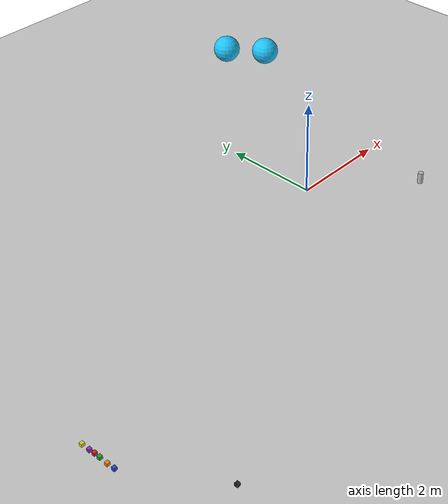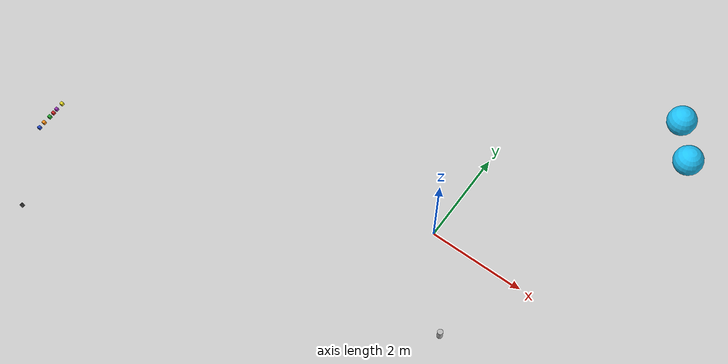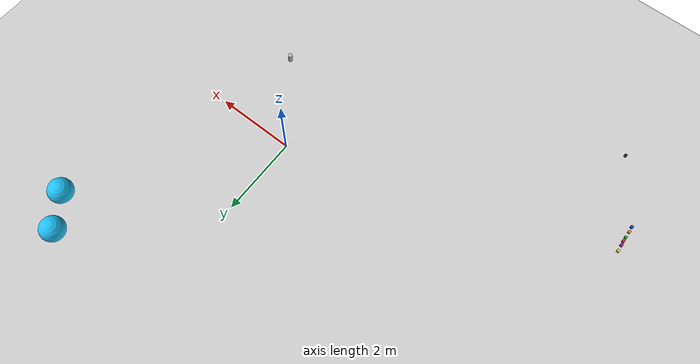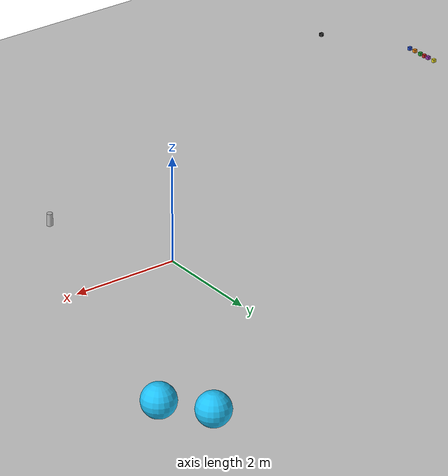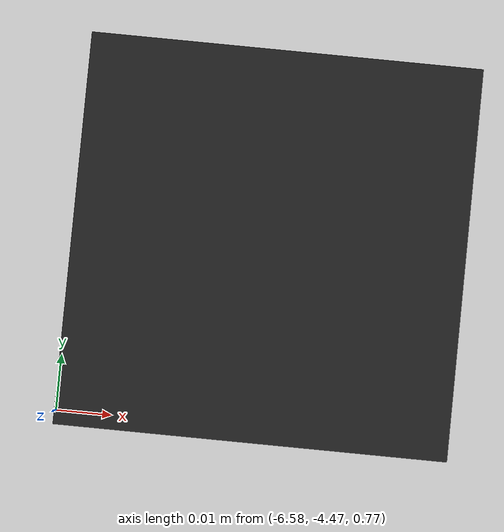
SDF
<sdf version="1.6">
 <world name="default">
  <gravity>0 0 -9.8</gravity>
  <magnetic_field>6e-06 2.3e-05 -4.2e-05</magnetic_field>
  <atmosphere type="adiabatic"/>
  <physics name="default_physics" default="0" type="ode">
   <max_step_size>0.001</max_step_size>
   <real_time_factor>1</real_time_factor>
   <real_time_update_rate>1000</real_time_update_rate>
  </physics>
  <scene>
   <ambient>0.4 0.4 0.4 1</ambient>
   <background>0.7 0.7 0.7 1</background>
   <shadows>0</shadows>
   <grid>0</grid>
   <origin_visual>0</origin_visual>
  </scene>
  <spherical_coordinates>
   <surface_model>EARTH_WGS84</surface_model>
   <latitude_deg>0</latitude_deg>
   <longitude_deg>0</longitude_deg>
   <elevation>0</elevation>
   <heading_deg>0</heading_deg>
  </spherical_coordinates>
  <model name="ground_plane">
   <static>1</static>
   <link name="link">
    <collision name="collision">
     <geometry><plane><normal>0 0 1</normal><size>100 100</size></plane></geometry>
     <surface><friction><ode><mu>100</mu><mu2>50</mu2></ode></friction></surface>
    </collision>
    <visual name="visual">
     <cast_shadows>0</cast_shadows>
     <geometry><plane><normal>0 0 1</normal><size>100 100</size></plane></geometry>
     <material>
      <script><uri>file://media/materials/scripts/gazebo.material</uri><name>Gazebo/Grey</name></script>
     </material>
    </visual>
   </link>
  </model>
  <model name="Ball_01_001">
   <link name="aws_robomaker_residential_Ball_01::link">
    <inertial>
     <mass>0.12</mass>
     <inertia>
      <ixx>0.030752</ixx>
      <ixy>0</ixy>
      <ixz>0</ixz>
      <iyy>0.030752</iyy>
      <iyz>0</iyz>
      <izz>0.030752</izz>
     </inertia>
    </inertial>
    <collision name="collision">
     <geometry><sphere><radius>0.31</radius></sphere></geometry>
     <surface>
      <friction><ode><mu>0.85</mu><mu2>0.85</mu2></ode></friction>
      <contact><ode><kd>8500</kd><max_vel>5.1</max_vel></ode></contact>
     </surface>
    </collision>
    <visual name="visual">
     <geometry><sphere><radius>0.31</radius></sphere></geometry>
     <material><diffuse>0.12 0.76 0.97 1</diffuse><ambient>0.03 0.21 0.27 1</ambient></material>
     <meta><layer>1</layer></meta>
    </visual>
   </link>
   <pose>3.2955 4.22567 0.31 0 -0 0</pose>
  </model>
  <model name="Ball_01_003">
   <link name="aws_robomaker_residential_Ball_01::link">
    <inertial>
     <mass>0.12</mass>
     <inertia>
      <ixx>0.030752</ixx>
      <ixy>0</ixy>
      <ixz>0</ixz>
      <iyy>0.030752</iyy>
      <iyz>0</iyz>
      <izz>0.030752</izz>
     </inertia>
    </inertial>
    <collision name="collision">
     <geometry><sphere><radius>0.31</radius></sphere></geometry>
     <surface>
      <friction><ode><mu>0.85</mu><mu2>0.85</mu2></ode></friction>
      <contact><ode><kd>8500</kd><max_vel>5.1</max_vel></ode></contact>
     </surface>
    </collision>
    <visual name="visual">
     <geometry><sphere><radius>0.31</radius></sphere></geometry>
     <material><diffuse>0.12 0.76 0.97 1</diffuse><ambient>0.03 0.21 0.27 1</ambient></material>
     <meta><layer>1</layer></meta>
    </visual>
   </link>
   <pose>2.7492 4.97777 0.30999 0 -0 0</pose>
  </model>
  <light name="LivingRoom_CeilingLight_0" type="point">
   <pose>1.1943 4.15576 2.2 0 -0 0</pose>
   <diffuse>0.5 0.5 0.5 1</diffuse>
   <specular>0.1 0.1 0.1 1</specular>
   <attenuation>
    <range>20</range>
    <constant>0.32</constant>
    <linear>0.01</linear>
    <quadratic>0.03</quadratic>
   </attenuation>
   <cast_shadows>0</cast_shadows>
   <direction>0 0 -1</direction>
  </light>
  <light name="LivingRoom_CeilingLight_1" type="point">
   <pose>1.1943 -1.58996 2.2 0 -0 0</pose>
   <diffuse>0.5 0.5 0.5 1</diffuse>
   <specular>0.1 0.1 0.1 1</specular>
   <attenuation>
    <range>20</range>
    <constant>0.05</constant>
    <linear>0.01</linear>
    <quadratic>0.09</quadratic>
   </attenuation>
   <cast_shadows>0</cast_shadows>
   <direction>0 0 -1</direction>
  </light>
  <light name="LivingRoom_WallLight_0" type="point">
   <pose>1.76956 -5.44437 2.2 0 -0 0</pose>
   <diffuse>0.24 0.24 0.24 1</diffuse>
   <specular>0.1 0.1 0.1 1</specular>
   <attenuation>
    <range>20</range>
    <constant>0.12</constant>
    <linear>0</linear>
    <quadratic>0.03</quadratic>
   </attenuation>
   <direction>0 0 -1</direction>
  </light>
  <light name="LivingRoom_WallLight_1" type="point">
   <pose>-0.13826 -5.44437 2.2 0 -0 0</pose>
   <diffuse>0.24 0.24 0.24 1</diffuse>
   <specular>0.1 0.1 0.1 1</specular>
   <attenuation>
    <range>20</range>
    <constant>0.12</constant>
    <linear>0</linear>
    <quadratic>0.03</quadratic>
   </attenuation>
   <direction>0 0 -1</direction>
  </light>
  <light name="TV_Light_0" type="point">
   <pose>0.8269 -4.93958 1.1 0 -0 0</pose>
   <diffuse>0.31372 0.31372 0.34901 1</diffuse>
   <specular>0.1 0.1 0.1 1</specular>
   <attenuation>
    <range>3</range>
    <constant>0.1</constant>
    <linear>0.04</linear>
    <quadratic>0.5</quadratic>
   </attenuation>
   <direction>0 0 -1</direction>
  </light>
  <light name="BedRoom_Portrait_Light_0" type="spot">
   <pose>-6.19038 -1.8297 1.5587 0.3 -0 0</pose>
   <diffuse>0.5 0.5 0.5 1</diffuse>
   <specular>0.1 0.1 0.1 1</specular>
   <attenuation>
    <range>20</range>
    <constant>0.5</constant>
    <linear>0.01</linear>
    <quadratic>0</quadratic>
   </attenuation>
   <spot><inner_angle>0.6</inner_angle><outer_angle>1</outer_angle><falloff>1</falloff></spot>
   <direction>0 0 -1</direction>
  </light>
  <light name="BedRoom_CeilingLight_0" type="point">
   <pose>-6.45106 -0.69204 2 0 -0 0</pose>
   <diffuse>0.5 0.5 0.5 1</diffuse>
   <specular>0.1 0.1 0.1 1</specular>
   <attenuation>
    <range>20</range>
    <constant>0.32</constant>
    <linear>0.01</linear>
    <quadratic>0.03</quadratic>
   </attenuation>
   <cast_shadows>0</cast_shadows>
   <direction>0 0 -1</direction>
  </light>
  <light name="Kitchen_CeilingLight_0" type="point">
   <pose>7.8582 -1.5905 2.28 0 -0 0</pose>
   <diffuse>0.5 0.5 0.5 1</diffuse>
   <specular>0.1 0.1 0.1 1</specular>
   <attenuation>
    <range>20</range>
    <constant>0.3</constant>
    <linear>0.01</linear>
    <quadratic>0.01</quadratic>
   </attenuation>
   <cast_shadows>0</cast_shadows>
   <direction>0 0 -1</direction>
  </light>
  <model name="beer">
   <link name="link">
    <pose>0 0 0.115 0 -0 0</pose>
    <inertial>
     <mass>0.39</mass>
     <inertia><ixx>0.00058</ixx><ixy>0</ixy><ixz>0</ixz><iyy>0.00058</iyy><iyz>0</iyz><izz>0.00019</izz></inertia>
    </inertial>
    <collision name="collision">
     <geometry><cylinder><radius>0.055</radius><length>0.23</length></cylinder></geometry>
    </collision>
    <visual name="visual">
     <geometry><cylinder><radius>0.055</radius><length>0.23</length></cylinder></geometry>
     <material>
      <script>
       <uri>model://beer/materials/scripts</uri>
       <uri>model://beer/materials/textures</uri>
       <name>Beer/Diffuse</name>
      </script>
     </material>
    </visual>
   </link>
   <pose>1.32776 -1.79057 0.365737 -2.8e-05 -2e-06 0.000833</pose>
  </model>
  <model name="demo_cube">
   <static>0</static>
   <link name="link">
    <inertial>
     <mass>0.25</mass>
     <inertia><ixx>0.001</ixx><ixy>0</ixy><ixz>0</ixz><iyy>0.001</iyy><iyz>0</iyz><izz>0.001</izz></inertia>
    </inertial>
    <collision name="collision">
     <geometry><box><size>0.06 0.06 0.06</size></box></geometry>
     <surface>
      <friction><ode><mu>30</mu><mu2>30</mu2></ode></friction>
      <contact><ode><kp>1e+06</kp><kd>100</kd><max_vel>1</max_vel><min_depth>0.002</min_depth></ode></contact>
     </surface>
    </collision>
    <visual name="visual">
     <geometry><box><size>0.06 0.06 0.06</size></box></geometry>
     <material>
      <script><uri>file://media/materials/scripts/gazebo.material</uri><name>Gazebo/Blue</name></script>
     </material>
    </visual>
    <velocity_decay><linear>0</linear><angular>0</angular></velocity_decay>
   </link>
   <pose>-7.49178 -3.00182 0.802999 0 -0 0</pose>
  </model>
  <model name="green_cube">
   <static>0</static>
   <link name="link">
    <inertial>
     <mass>0.25</mass>
     <inertia><ixx>0.001</ixx><ixy>0</ixy><ixz>0</ixz><iyy>0.001</iyy><iyz>0</iyz><izz>0.001</izz></inertia>
    </inertial>
    <collision name="collision">
     <geometry><box><size>0.06 0.06 0.06</size></box></geometry>
     <surface>
      <friction><ode><mu>30</mu><mu2>30</mu2></ode></friction>
      <contact><ode><kp>1e+06</kp><kd>100</kd><max_vel>1</max_vel><min_depth>0.002</min_depth></ode></contact>
     </surface>
    </collision>
    <visual name="visual">
     <geometry><box><size>0.06 0.06 0.06</size></box></geometry>
     <material>
      <script><uri>file://media/materials/scripts/gazebo.material</uri><name>Gazebo/Green</name></script>
     </material>
    </visual>
    <velocity_decay><linear>0</linear><angular>0</angular></velocity_decay>
   </link>
   <pose>-7.50295 -2.7035 0.802999 0 -0 0</pose>
  </model>
  <model name="red_cube">
   <static>0</static>
   <link name="link">
    <inertial>
     <mass>0.25</mass>
     <inertia><ixx>0.001</ixx><ixy>0</ixy><ixz>0</ixz><iyy>0.001</iyy><iyz>0</iyz><izz>0.001</izz></inertia>
    </inertial>
    <collision name="collision">
     <geometry><box><size>0.06 0.06 0.06</size></box></geometry>
     <surface>
      <friction><ode><mu>30</mu><mu2>30</mu2></ode></friction>
      <contact><ode><kp>1e+06</kp><kd>100</kd><max_vel>1</max_vel><min_depth>0.002</min_depth></ode></contact>
     </surface>
    </collision>
    <visual name="visual">
     <geometry><box><size>0.06 0.06 0.06</size></box></geometry>
     <material>
      <script><uri>file://media/materials/scripts/gazebo.material</uri><name>Gazebo/Red</name></script>
     </material>
    </visual>
    <velocity_decay><linear>0</linear><angular>0</angular></velocity_decay>
   </link>
   <pose>-7.50569 -2.59513 0.802999 0 -0 0</pose>
  </model>
  <model name="yellow_cube">
   <static>0</static>
   <link name="link">
    <inertial>
     <mass>0.25</mass>
     <inertia><ixx>0.001</ixx><ixy>0</ixy><ixz>0</ixz><iyy>0.001</iyy><iyz>0</iyz><izz>0.001</izz></inertia>
    </inertial>
    <collision name="collision">
     <geometry><box><size>0.06 0.06 0.06</size></box></geometry>
     <surface>
      <friction><ode><mu>30</mu><mu2>30</mu2></ode></friction>
      <contact><ode><kp>1e+06</kp><kd>100</kd><max_vel>1</max_vel><min_depth>0.002</min_depth></ode></contact>
     </surface>
    </collision>
    <visual name="visual">
     <geometry><box><size>0.06 0.06 0.06</size></box></geometry>
     <material>
      <script><uri>file://media/materials/scripts/gazebo.material</uri><name>Gazebo/Yellow</name></script>
     </material>
    </visual>
    <velocity_decay><linear>0</linear><angular>0</angular></velocity_decay>
   </link>
   <pose>-7.52266 -2.33773 0.802999 0 0 -1e-06</pose>
  </model>
  <model name="brown_cube">
   <static>0</static>
   <link name="link">
    <inertial>
     <mass>0.25</mass>
     <inertia><ixx>0.001</ixx><ixy>0</ixy><ixz>0</ixz><iyy>0.001</iyy><iyz>0</iyz><izz>0.001</izz></inertia>
    </inertial>
    <collision name="collision">
     <geometry><box><size>0.06 0.06 0.06</size></box></geometry>
     <surface>
      <friction><ode><mu>30</mu><mu2>30</mu2></ode></friction>
      <contact><ode><kp>1e+06</kp><kd>100</kd><max_vel>1</max_vel><min_depth>0.002</min_depth></ode></contact>
     </surface>
    </collision>
    <visual name="visual">
     <geometry><box><size>0.06 0.06 0.06</size></box></geometry>
     <material>
      <script><uri>file://media/materials/scripts/gazebo.material</uri><name>Gazebo/Orange</name></script>
     </material>
    </visual>
    <velocity_decay><linear>0</linear><angular>0</angular></velocity_decay>
   </link>
   <pose>-7.503 -2.86404 0.802999 0 -0 0</pose>
  </model>
  <model name="violet_cube">
   <static>0</static>
   <link name="link">
    <inertial>
     <mass>0.25</mass>
     <inertia><ixx>0.001</ixx><ixy>0</ixy><ixz>0</ixz><iyy>0.001</iyy><iyz>0</iyz><izz>0.001</izz></inertia>
    </inertial>
    <collision name="collision">
     <geometry><box><size>0.06 0.06 0.06</size></box></geometry>
     <surface>
      <friction><ode><mu>30</mu><mu2>30</mu2></ode></friction>
      <contact><ode><kp>1e+06</kp><kd>100</kd><max_vel>1</max_vel><min_depth>0.002</min_depth></ode></contact>
     </surface>
    </collision>
    <visual name="visual">
     <geometry><box><size>0.06 0.06 0.06</size></box></geometry>
     <material>
      <script><uri>file://media/materials/scripts/gazebo.material</uri><name>Gazebo/Purple</name></script>
     </material>
    </visual>
    <velocity_decay><linear>0</linear><angular>0</angular></velocity_decay>
   </link>
   <pose>-7.51658 -2.49328 0.802999 0 -0 0</pose>
  </model>
  <model name="black_cube">
   <static>0</static>
   <link name="link">
    <inertial>
     <mass>0.25</mass>
     <inertia><ixx>0.001</ixx><ixy>0</ixy><ixz>0</ixz><iyy>0.001</iyy><iyz>0</iyz><izz>0.001</izz></inertia>
    </inertial>
    <collision name="collision">
     <geometry><box><size>0.06 0.06 0.06</size></box></geometry>
     <surface>
      <friction><ode><mu>30</mu><mu2>30</mu2></ode></friction>
      <contact><ode><kp>1e+06</kp><kd>100</kd><max_vel>1</max_vel><min_depth>0.002</min_depth></ode></contact>
     </surface>
    </collision>
    <visual name="visual">
     <geometry><box><size>0.06 0.06 0.06</size></box></geometry>
     <material>
      <script><uri>file://media/materials/scripts/gazebo.material</uri><name>Gazebo/Black</name></script>
     </material>
    </visual>
    <velocity_decay><linear>0</linear><angular>0</angular></velocity_decay>
   </link>
   <pose>-6.54502 -4.43956 0.803343 -2.4e-05 -0 -0</pose>
  </model>
 </world>
</sdf>
